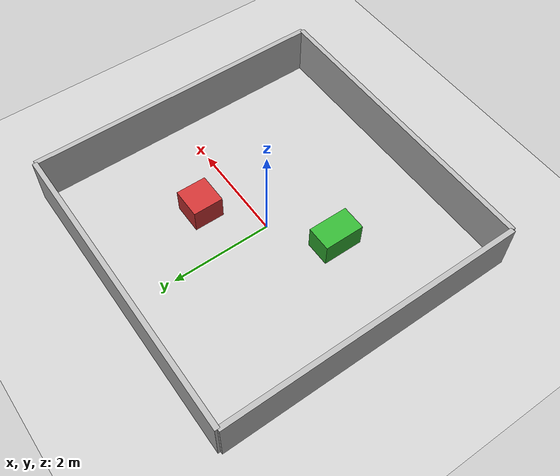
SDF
<?xml version="1.0" ?>
<sdf version="1.6">
  <world name="clean_room">

    <include>
      <uri>model://sun</uri>
    </include>

    <include>
      <uri>model://ground_plane</uri>
    </include>

    <model name="wall_front">
      <static>true</static>
      <pose>3 0 0.5 0 0 0</pose>
      <link name="link">
        <collision name="collision">
          <geometry>
            <box>
              <size>0.1 6 1</size>
            </box>
          </geometry>
        </collision>
        <visual name="visual">
          <geometry>
            <box>
              <size>0.1 6 1</size>
            </box>
          </geometry>
        </visual>
      </link>
    </model>

    <model name="wall_back">
      <static>true</static>
      <pose>-3 0 0.5 0 0 0</pose>
      <link name="link">
        <collision name="collision">
          <geometry>
            <box>
              <size>0.1 6 1</size>
            </box>
          </geometry>
        </collision>
        <visual name="visual">
          <geometry>
            <box>
              <size>0.1 6 1</size>
            </box>
          </geometry>
        </visual>
      </link>
    </model>

    <model name="wall_left">
      <static>true</static>
      <pose>0 3 0.5 0 0 0</pose>
      <link name="link">
        <collision name="collision">
          <geometry>
            <box>
              <size>6 0.1 1</size>
            </box>
          </geometry>
        </collision>
        <visual name="visual">
          <geometry>
            <box>
              <size>6 0.1 1</size>
            </box>
          </geometry>
        </visual>
      </link>
    </model>

    <model name="wall_right">
      <static>true</static>
      <pose>0 -3 0.5 0 0 0</pose>
      <link name="link">
        <collision name="collision">
          <geometry>
            <box>
              <size>6 0.1 1</size>
            </box>
          </geometry>
        </collision>
        <visual name="visual">
          <geometry>
            <box>
              <size>6 0.1 1</size>
            </box>
          </geometry>
        </visual>
      </link>
    </model>

    <model name="obstacle_box_1">
      <static>true</static>
      <pose>1.0 0.8 0.25 0 0 0</pose>
      <link name="link">
        <collision name="collision">
          <geometry>
            <box>
              <size>0.6 0.6 0.5</size>
            </box>
          </geometry>
        </collision>
        <visual name="visual">
          <geometry>
            <box>
              <size>0.6 0.6 0.5</size>
            </box>
          </geometry>
          <material>
            <ambient>0.8 0.2 0.2 1</ambient>
          </material>
        </visual>
      </link>
    </model>

    <model name="obstacle_box_2">
      <static>true</static>
      <pose>-1.0 -0.8 0.25 0 0 0</pose>
      <link name="link">
        <collision name="collision">
          <geometry>
            <box>
              <size>0.5 0.8 0.5</size>
            </box>
          </geometry>
        </collision>
        <visual name="visual">
          <geometry>
            <box>
              <size>0.5 0.8 0.5</size>
            </box>
          </geometry>
          <material>
            <ambient>0.2 0.7 0.2 1</ambient>
          </material>
        </visual>
      </link>
    </model>

  </world>
</sdf>
